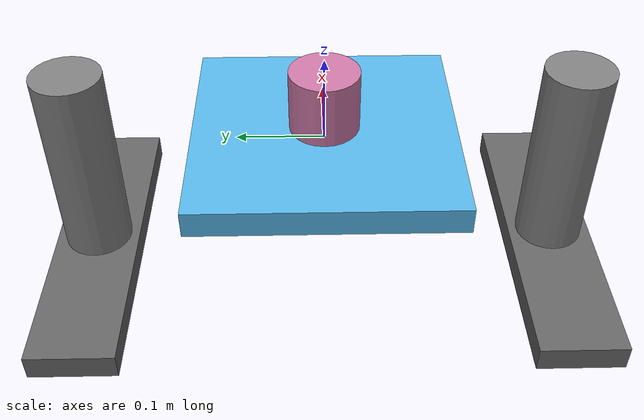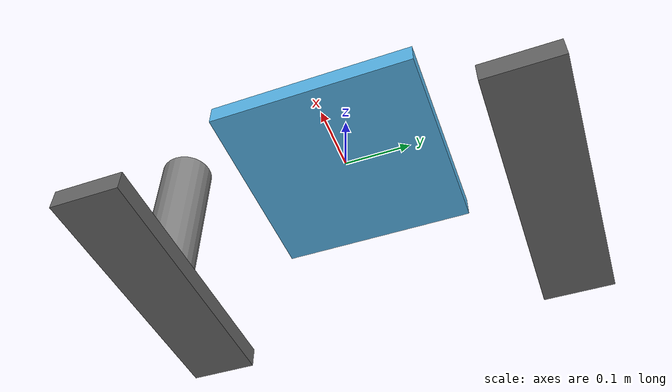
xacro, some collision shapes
<?xml version="1.0"?>
<robot xmlns:xacro="http://www.ros.org/wiki/xacro" name="os1_example">

  <!-- Base Footprint -->
  <link name="base_footprint" />

  <!-- Make the robot static -->
  <gazebo>
    <static>true</static>
  </gazebo>

  <!-- Base Link -->
  <joint name="footprint" type="fixed" >
   <parent link="base_footprint" />
    <child link="base_link" />
    <origin xyz="0 0 0" rpy="0 0 0" />
  </joint>
  <link name="base_link" >
    <visual>
      <geometry>
        <box size="0.3 0.3 0.03" />
      </geometry>
    </visual>
    <collision>
      <geometry>
        <box size="0.3 0.3 0.03" />
      </geometry>
    </collision>
    <inertial>
      <origin xyz="0 0 0"/>
      <mass value="10"/>
      <inertia ixx="1.0" ixy="0.0" ixz="0.0"
               iyy="1.0" iyz="0.0"
               izz="1.0" />
    </inertial>
  </link>

    <!-- Left UAV Leg -->
  <link name="uav_leg_left">
    <visual>
      <geometry>
        <cylinder radius="0.04" length="0.25" />
      </geometry>
      <origin xyz="0 0 0" rpy="0 0 0" />
      <material name="gray">
        <color rgba="0.5 0.5 0.5 1.0"/>
      </material>
    </visual>
    <collision>
      <geometry>
        <cylinder radius="0.04" length="0.25" />
      </geometry>
      <origin xyz="0 0 0" rpy="0 0 0" />
    </collision>
    <inertial>
      <mass value="0.1"/>
      <inertia ixx="1e-5" ixy="0.0" ixz="0.0" iyy="1e-5" iyz="0.0" izz="1e-5"/>
    </inertial>
  </link>
  <joint name="uav_leg_left_joint" type="fixed">
    <parent link="base_link"/>
    <child link="uav_leg_left"/>
    <origin xyz="0 0.28 -0.04" rpy="0 0 0"/>
  </joint>
<link name="uav_leg_left_foot">
  <visual>
    <geometry>
      <box size="0.4 0.1 0.03"/>  <!-- 0.4m wide in x, same thickness and height -->
    </geometry>
    <origin xyz="0 0 -0.06" rpy="0 0 0"/> <!-- Centered at bottom of leg -->
    <material name="gray">
      <color rgba="0.4 0.4 0.4 1.0"/>
    </material>
  </visual>
  <collision>
    <geometry>
      <box size="0.4 0.1 0.03"/>
    </geometry>
    <origin xyz="0 0 0" rpy="0 0 0"/>
  </collision>
  <inertial>
    <mass value="0.05"/>
    <inertia ixx="1e-6" ixy="0.0" ixz="0.0" iyy="1e-6" iyz="0.0" izz="1e-6"/>
  </inertial>
</link>
<joint name="uav_leg_left_foot_joint" type="fixed">
  <parent link="uav_leg_left"/>
  <child link="uav_leg_left_foot"/>
  <origin xyz="0 0 -0.06" rpy="0 0 0"/> <!-- Bottom of leg -->
</joint>

  <!-- Right UAV Leg -->
  <link name="uav_leg_right">
    <visual>
      <geometry>
        <cylinder radius="0.04" length="0.25" />
      </geometry>
      <origin xyz="0 0 0" rpy="0 0 0" />
      <material name="gray">
        <color rgba="0.5 0.5 0.5 1.0"/>
      </material>
    </visual>
    <collision>
      <geometry>
        <cylinder radius="0.04" length="0.25" />
      </geometry>
      <origin xyz="0 0 0" rpy="0 0 0" />
    </collision>
    <inertial>
      <mass value="0.1"/>
      <inertia ixx="1e-5" ixy="0.0" ixz="0.0" iyy="1e-5" iyz="0.0" izz="1e-5"/>
    </inertial>
  </link>
  <joint name="uav_leg_right_joint" type="fixed">
    <parent link="base_link"/>
    <child link="uav_leg_right"/>
    <origin xyz="0 -0.28 -0.04" rpy="0 0 0"/>
  </joint>
  <link name="uav_leg_right_foot">
  <visual>
    <geometry>
      <box size="0.4 0.1 0.03"/>
    </geometry>
    <origin xyz="0 0 -0.06" rpy="0 0 0"/>
    <material name="gray">
      <color rgba="0.4 0.4 0.4 1.0"/>
    </material>
  </visual>
  <collision>
    <geometry>
      <box size="0.4 0.1 0.03"/>
    </geometry>
    <origin xyz="0 0 0" rpy="0 0 0"/>
  </collision>
  <inertial>
    <mass value="0.05"/>
    <inertia ixx="1e-6" ixy="0.0" ixz="0.0" iyy="1e-6" iyz="0.0" izz="1e-6"/>
  </inertial>
</link>
<joint name="uav_leg_right_foot_joint" type="fixed">
  <parent link="uav_leg_right"/>
  <child link="uav_leg_right_foot"/>
  <origin xyz="0 0 -0.06" rpy="0 0 0"/>
</joint>

  <xacro:include filename="$(find ouster_description)/urdf/OS1-64.urdf.xacro"/>
  <xacro:OS1-64 parent="base_link" name="os1_sensor">
    <origin xyz="0 0 0.05" rpy="0 0 0" />
  </xacro:OS1-64>

</robot>

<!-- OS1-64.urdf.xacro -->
<robot xmlns:xacro="http://www.ros.org/wiki/xacro" name="OS1-64">
  <xacro:property name="M_PI" value="3.1415926535897931" />
  <xacro:macro name="OS1-64" params="*origin parent:=base_link name:=os1_sensor topic_points:=/os1_cloud_node/points topic_imu:=/os1_cloud_node/imu hz:=10 lasers:=32 samples:=512 min_range:=0.3 max_range:=50.0 noise:=0.02 min_angle:=-${M_PI} max_angle:=${M_PI} lidar_link:=os1_lidar imu_link:=os1_imu vfov_min:=-.80 vfov_max:=.80">

    <!-- _mount_joint connects to base joint -->
    <joint name="${name}_mount_joint" type="fixed">
      <origin xyz="0 0 0" rpy="0 0 0" />
      <parent link="${parent}"/>
      <child link="${name}"/>
    </joint>

    <link name="${name}">
      <inertial>
        <mass value="0.33"/>
        <origin xyz="0 0 0.05" rpy="0 0 0" />
        <inertia ixx="0.000241148" ixy="0" ixz="0"
                  iyy="0.000241148" iyz="0" izz="0.000264"/>
      </inertial>
      <collision name="base_collision">
        <origin xyz="0 0 0.05" rpy="0 0 0" />
        <geometry>
          <cylinder radius="0.04" length="0.073"/>
        </geometry>
      </collision>
      <visual name="base_visual">
        <origin xyz="0 0 0.05" rpy="0 0 1.5707" />
        <geometry>
          <mesh filename="package://ouster_description/meshes/os1_64.dae"/>
        </geometry>
      </visual>
    </link>

    <link name="${imu_link}" />

    <link name="${lidar_link}" />

    <joint name="${name}_imu_link_joint" type="fixed">
      <parent link="${name}" />
      <child link="${imu_link}" />
      <origin xyz="0.006253 -0.011775 0.027645" rpy="0 0 0" />
    </joint>
    <gazebo reference="${imu_link}">
    </gazebo>

    <joint name="${name}_lidar_link_joint" type="fixed">
      <parent link="${name}" />
      <child link="${lidar_link}" />
      <origin xyz="0.0 0.0 0.03618" rpy="0 0 0" />
    </joint>

    <!-- Gazebo requires the ouster_gazebo_plugins package -->
    <gazebo reference="${name}">
        <sensor type="ray" name="${name}-OS1-64">
          <pose>0 0 0 0 0 0</pose>
          <visualize>false</visualize>
          <update_rate>${hz}</update_rate>
          <ray>
            <scan>
              <horizontal>
                <samples>${samples}</samples>
                <resolution>1</resolution>
                <min_angle>${min_angle}</min_angle>
                <max_angle>${max_angle}</max_angle>
              </horizontal>
              <vertical>
                <samples>${lasers}</samples>
                <resolution>1</resolution>
                <min_angle>${vfov_min}</min_angle>
                <max_angle>${vfov_max}</max_angle>
              </vertical>
            </scan>
            <range>
              <min>${min_range}</min>
              <max>${max_range}</max>
              <resolution>0.03</resolution>
            </range>
          </ray>
          <plugin name="gazebo_ros_laser_controller" filename="libgazebo_ros_ouster_laser.so">
            <topicName>${topic_points}</topicName>
            <frameName>${lidar_link}</frameName>
            <min_range>${min_range}</min_range>
            <max_range>${max_range}</max_range>
            <gaussianNoise>${noise}</gaussianNoise>
          </plugin>
        </sensor>
    </gazebo>

    <!-- IMU -->
    <gazebo>
      <plugin name="imu_controller" filename="libhector_gazebo_ros_imu.so">
        <robotNamespace>/</robotNamespace>
        <updateRate>100.0</updateRate>
        <bodyName>${imu_link}</bodyName>
        <topicName>${topic_imu}</topicName>
        <accelDrift>0.005 0.005 0.005</accelDrift>
        <accelGaussianNoise>0.005 0.005 0.005</accelGaussianNoise>
        <rateDrift>0.005 0.005 0.005 </rateDrift>
        <rateGaussianNoise>0.005 0.005 0.005 </rateGaussianNoise>
        <headingDrift>0.005</headingDrift>
        <headingGaussianNoise>0.005</headingGaussianNoise>
      </plugin>
    </gazebo>

  </xacro:macro>
</robot>
